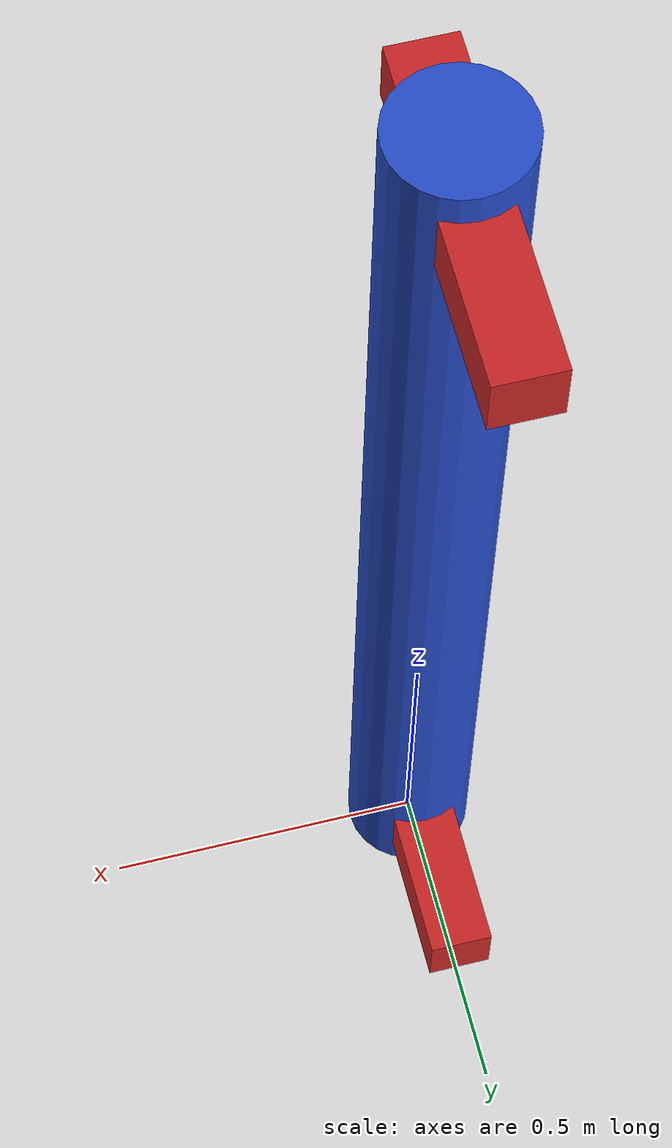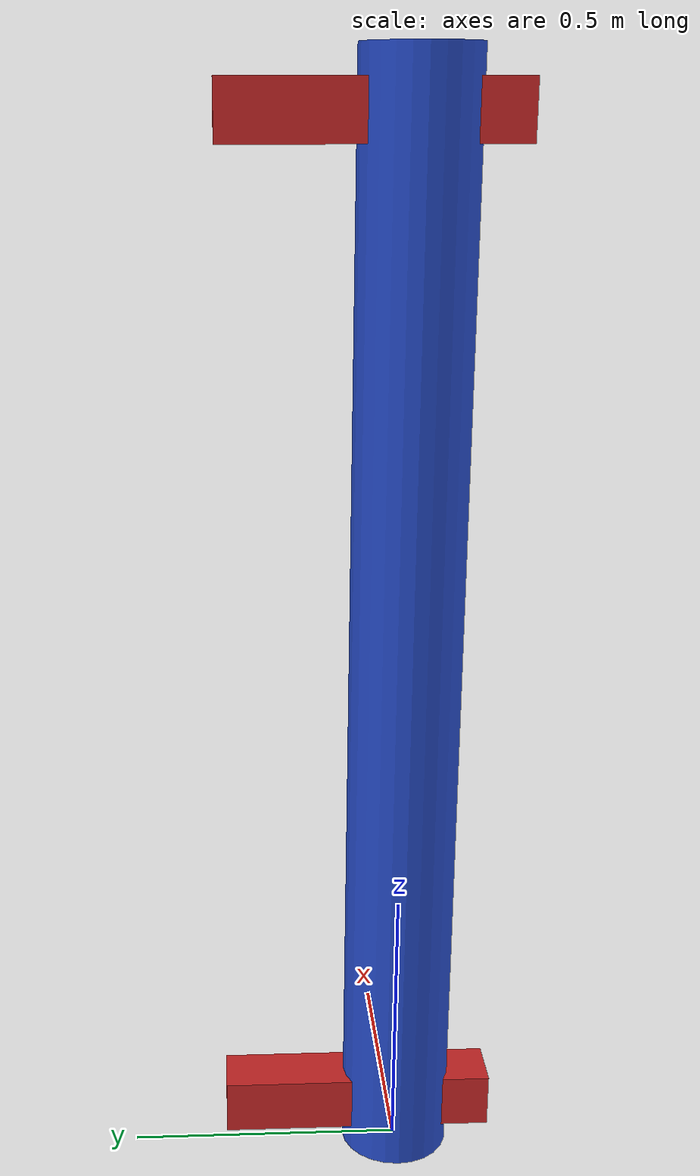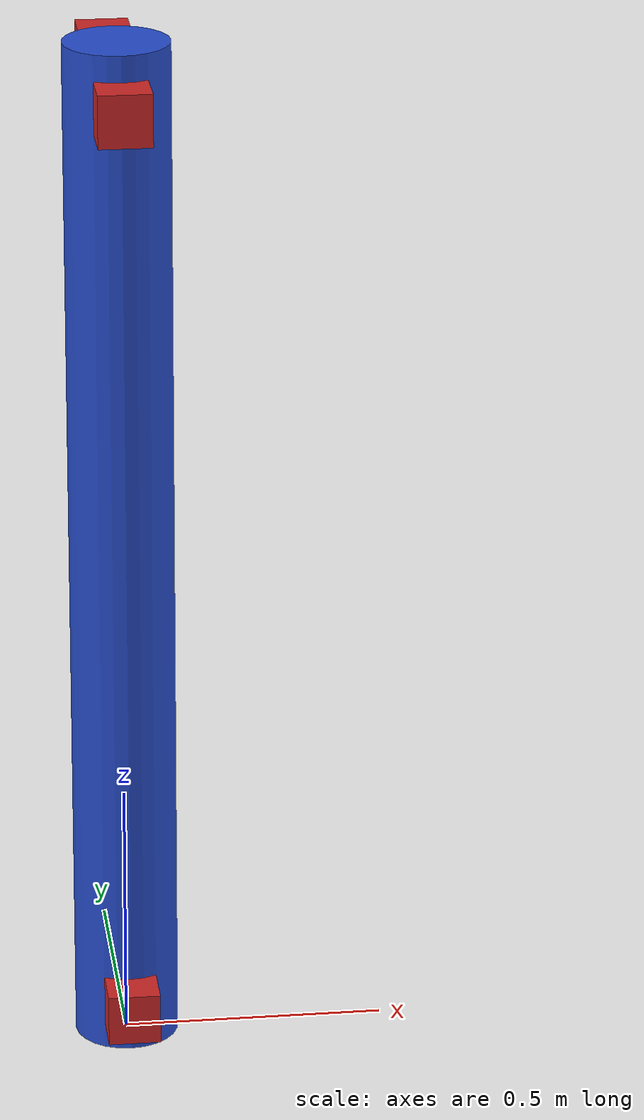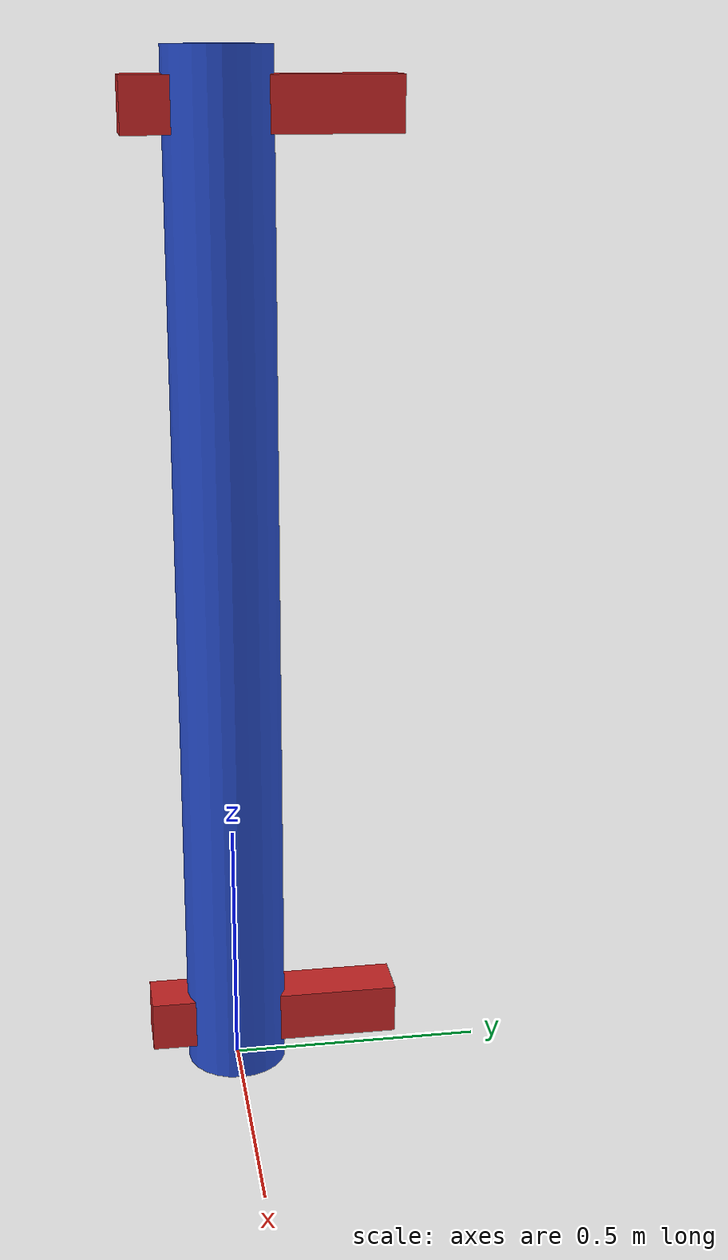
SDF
<sdf version='1.6'>
<model name='sign_post'>
  <static>false</static>
  <pose frame=''>0 0 0 0 -0 0</pose>
  <link name='link'>
    <pose frame=''>0 0 0 0 -0 0</pose>
    <inertial>
	<pose frame=''>0 0 -5 0 0 0 </pose>
      <mass>200</mass>
      <inertia>
        <ixx>0.145833</ixx>
        <ixy>0</ixy>
        <ixz>0</ixz>
        <iyy>0.145833</iyy>
        <iyz>0</iyz>
        <izz>0.125</izz>
      </inertia>
    </inertial>
    <collision name='v_collision'>
      <pose frame=''>0 0 1 0 -0 0</pose>
      <geometry>
        <cylinder>
          <radius>0.1</radius>
          <length>2</length>
        </cylinder>
      </geometry>
      <max_contacts>10</max_contacts>
    </collision>
    <visual name='v_visual'>
      <pose frame=''>0 0 1 0 -0 0</pose>
      <geometry>
        <cylinder>
          <radius>0.1</radius>
          <length>2</length>
        </cylinder>
      </geometry>
      <material>
        <script>
          <name>Gazebo/Blue</name>
          <uri>file://media/materials/scripts/gazebo.material</uri>
        </script>
      </material>
    </visual>

    <collision name='h_collision'>
      <pose frame=''>0 0.075 .1 0 -0 0</pose>
      <geometry>
        <box>
          <size>.1 .5 .1</size>
        </box>
      </geometry>
      <max_contacts>10</max_contacts>
    </collision>
    <visual name='h_visual'>
      <pose frame=''>0 0.075 .1 0 -0 0</pose>
      <geometry>
        <box>
          <size>.1 .5 .1</size>
        </box>
      </geometry>
      <material>
        <script>
          <name>Gazebo/Red</name>
          <uri>file://media/materials/scripts/gazebo.material</uri>
        </script>
      </material>
    </visual>

    <collision name='t_collision'>
      <pose frame=''>0 0.05 1.9 0 -0 0</pose>
      <geometry>
        <box>
          <size>0.1 .5 .1</size>
        </box>
      </geometry>
      <max_contacts>10</max_contacts>
    </collision>
    <visual name='t_visual'>
      <pose frame=''>0 0.075 1.9 0 -0 0</pose>
      <geometry>
        <box>
          <size>.1 .5 .1</size>
        </box>
      </geometry>
      <material>
        <script>
          <name>Gazebo/Red</name>
          <uri>file://media/materials/scripts/gazebo.material</uri>
        </script>
      </material>
    </visual>

    <self_collide>0</self_collide>
    <kinematic>0</kinematic>
  </link>

</model>
</sdf>

<!-- Spawn with the following command: rosrun gazebo_ros spawn_model -sdf -file /home/justin/catkin_ws/src/navigation_test/configs/models/pole_005_06.srdf -model pole -x 1
 -->
